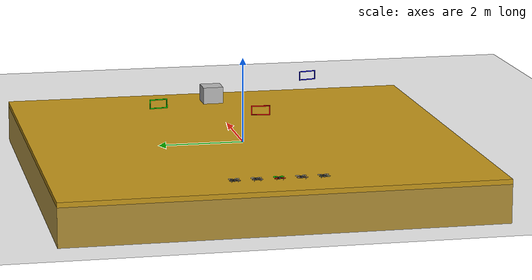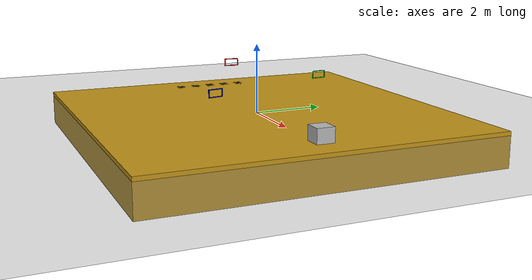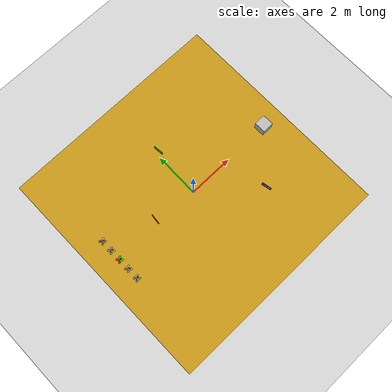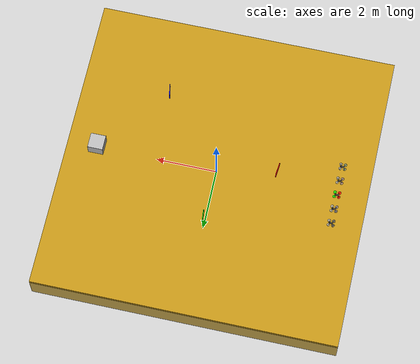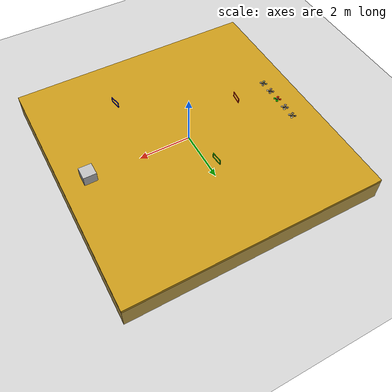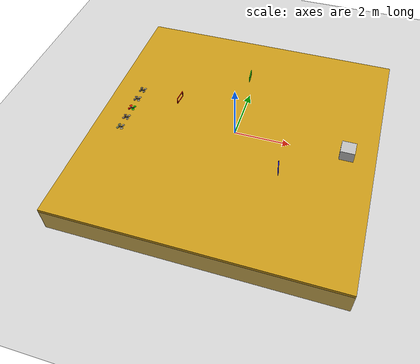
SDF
<sdf version="1.6">
 <world name="I3A world">
  <plugin name="World" filename="libWorld.so"/>
  <include><name>floor</name><uri>../models/DC/floor</uri></include>
  <include><name>tatami</name><uri>../models/DC/tatami</uri><pose>0 0 -0.4 0 0 0</pose></include>
  <include><name>vertiport</name><uri>../models/DC/base_drone</uri><pose>4 0 0.26 0 0 0</pose></include>
  <include><name>frame_red</name><uri>../models/DC/frame_red</uri><pose>-2 0 1.2 0 0 -0.1</pose></include>
  <include><name>frame_green</name><uri>../models/DC/frame_green</uri><pose>0 2 1 0 0 0.1</pose></include>
  <include><name>frame_blue</name><uri>../models/DC/frame_blue</uri><pose>2 -2 1.1 0 0 0.2</pose></include>
  <include><name>abejorro</name><pose>-4 0 0.13 0 0 0</pose><uri>../models/DC/abejorroC</uri></include>
  <include><name>abejorro1</name><uri>../models/DC/abejorro1</uri><pose>-4 1 0.13 0 0 0</pose></include>
  <include><name>abejorro2</name><pose>-4 0.5 0.13 0 0 0</pose><uri>../models/DC/abejorro2</uri></include>
  <include><name>abejorro3</name><pose>-4 -0.5 0.13 0 0 0</pose><uri>../models/DC/abejorro3</uri></include>
  <include><name>abejorro4</name><pose>-4 -1 0.13 0 0 0</pose><uri>../models/DC/abejorro4</uri></include>
  <scene><ambient>0.5 0.5 0.5 1.0</ambient><shadows>true</shadows><origin_visual>false</origin_visual></scene>
  <light type="directional" name="sun">
   <pose>0 0 10 0 0 0</pose>
   <diffuse>1 1 1 1</diffuse>
   <specular>0.2 0.2 0.2 1</specular>
   <attenuation><range>100</range><constant>1</constant></attenuation>
   <direction>0.5 0.1 -0.9</direction>
  </light>
  <physics type="ode">
   <max_step_size>0.001</max_step_size>
   <real_time_update_rate>1000</real_time_update_rate>
  </physics>
 </world>
</sdf>

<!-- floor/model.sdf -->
<sdf version="1.5">

<model name="ground_plane">

<static>true</static>

<link name="link">

  <collision name="collision">

    <geometry>
      <plane>
        <normal>0 0 1</normal>
        <size>200 200</size>
      </plane>
    </geometry>

    <surface>
      <friction>
        <ode>
          <mu>100.0</mu>
          <mu2>50.0</mu2>
          <slip1>0.0</slip1>
          <slip2>0.0</slip2>
        </ode>
      </friction>
    </surface>

  </collision>

  <visual name="visual">

    <cast_shadows>true</cast_shadows>

    <geometry>
      <plane>
        <normal>0 0 1</normal>
        <size>200 200</size>
      </plane>
    </geometry>
    <material>
        <ambient>0.5 0.5 0.5 1</ambient>
        <diffuse>0.5 0.5 0.5 1</diffuse>
    </material>

  </visual>

</link>

</model>
</sdf>

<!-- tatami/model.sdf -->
<sdf version="1.7">

<model name="tatami_model">

  <static>true</static>

  <link name="link">

    <collision name="collision">

      <geometry>
        <box>
          <size>10 10 1</size>
        </box>
      </geometry>

      <surface>
        <friction>
          <ode>
            <mu>100.0</mu>
            <mu2>50.0</mu2>
            <slip1>0.0</slip1>
            <slip2>0.0</slip2>
          </ode>
        </friction>
      </surface>

    </collision>

    <visual name="visual">

      <cast_shadows>true</cast_shadows>

      <geometry>
        <box>
          <size>10 10 1</size>
        </box>
      </geometry>
      <material>
          <ambient>0.76 0.58 0.09 1</ambient>
          <diffuse>0.76 0.58 0.09 1</diffuse>
      </material>

    </visual>

  </link>

</model>
</sdf>

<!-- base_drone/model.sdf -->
<sdf version="1.7">

<model name="base_drone">
	<static>true</static>
	<link name="link">

	<collision name="collision">

		<geometry>
			<box>
			<size>0.50 0.50 0.50</size>
			</box>
		</geometry>

		<surface>
			<friction>
			<ode>
				<mu>100.0</mu>
				<mu2>50.0</mu2>
				<slip1>0.0</slip1>
				<slip2>0.0</slip2>
			</ode>
			</friction>
		</surface>

	</collision>

	<visual name="visual">
		<geometry>
			<box>
			<size>0.50 0.50 0.50</size>
			</box>
		</geometry>
	</visual>

	</link>
</model>

</sdf>

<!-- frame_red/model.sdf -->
<sdf version="1.7">
<model name="frame_red">

<static>true</static>

<link name='framelink'>
    <!-- Marco de 40x20 cms. Borde de 3cms. -->

    <visual name='up'>
        <pose>0 0 0.10 0 0 0</pose>
        <geometry>
          <box>
            <size>0.02 0.42 0.02</size>
          </box>
        </geometry>
        <material>
          <ambient>1 0 0 1</ambient>
          <diffuse>1 0 0 1</diffuse>
        </material>
    </visual>

    <collision name='up'>
        <pose>0 0 0.10 0 0 0</pose>
        <geometry>
          <box>
            <size>0.02 0.42 0.02</size>
          </box>
        </geometry>
        <surface>
          <friction>
            <ode>
              <mu>0.1</mu>
              <mu2>0.2</mu2>
              <slip1>1.0</slip1>
              <slip2>1.0</slip2>
            </ode>
          </friction>
        </surface>
    </collision>

    <visual name='down'>
        <pose>0 0 -0.10 0 0 0</pose>
        <geometry>
          <box>
            <size>0.02 0.42 0.02</size>
          </box>
        </geometry>
        <material>
          <ambient>1 0 0 1</ambient>
          <diffuse>1 0 0 1</diffuse>
        </material>
    </visual>

    <collision name='down'>
        <pose>0 0 -0.10 0 0 0</pose>
        <geometry>
          <box>
            <size>0.02 0.42 0.02</size>
          </box>
        </geometry>
        <surface>
          <friction>
            <ode>
              <mu>0.1</mu>
              <mu2>0.2</mu2>
              <slip1>1.0</slip1>
              <slip2>1.0</slip2>
            </ode>
          </friction>
        </surface>
    </collision>

    <visual name='left'>
        <pose>0 -0.20 0 0 0 0</pose>
        <geometry>
          <box>
            <size>0.02 0.02 0.18</size>
          </box>
        </geometry>
        <material>
          <ambient>1 0 0 1</ambient>
          <diffuse>1 0 0 1</diffuse>
        </material>
    </visual>

    <collision name='left'>
        <pose>0 -0.20 0 0 0 0</pose>
        <geometry>
          <box>
            <size>0.02 0.02 0.18</size>
          </box>
        </geometry>
        <surface>
          <friction>
            <ode>
              <mu>0.1</mu>
              <mu2>0.2</mu2>
              <slip1>1.0</slip1>
              <slip2>1.0</slip2>
            </ode>
          </friction>
        </surface>
    </collision>

    <visual name='right'>
        <pose>0 0.20 0 0 0 0</pose>
        <geometry>
          <box>
            <size>0.02 0.02 0.18</size>
          </box>
        </geometry>
        <material>
          <ambient>1 0 0 1</ambient>
          <diffuse>1 0 0 1</diffuse>
        </material>
    </visual>

    <collision name='right'>
        <pose>0 0.20 0 0 0 0</pose>
        <geometry>
          <box>
            <size>0.02 0.02 0.18</size>
          </box>
        </geometry>
        <surface>
          <friction>
            <ode>
              <mu>0.1</mu>
              <mu2>0.2</mu2>
              <slip1>1.0</slip1>
              <slip2>1.0</slip2>
            </ode>
          </friction>
        </surface>
    </collision>

</link>

</model>

</sdf>

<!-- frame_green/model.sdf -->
<sdf version="1.7">
<model name="frame_green">

<static>true</static>

<link name='framelink'>
    <!-- Marco de 40x20 cms. Borde de 3cms. -->

    <visual name='up'>
        <pose>0 0 0.10 0 0 0</pose>
        <geometry>
          <box>
            <size>0.02 0.42 0.02</size>
          </box>
        </geometry>
        <material>
          <ambient>0 1 0 1</ambient>
          <diffuse>0 1 0 1</diffuse>
        </material>
    </visual>

    <collision name='up'>
        <pose>0 0 0.10 0 0 0</pose>
        <geometry>
          <box>
            <size>0.02 0.42 0.02</size>
          </box>
        </geometry>
        <surface>
          <friction>
            <ode>
              <mu>0.1</mu>
              <mu2>0.2</mu2>
              <slip1>1.0</slip1>
              <slip2>1.0</slip2>
            </ode>
          </friction>
        </surface>
    </collision>

    <visual name='down'>
        <pose>0 0 -0.10 0 0 0</pose>
        <geometry>
          <box>
            <size>0.02 0.42 0.02</size>
          </box>
        </geometry>
        <material>
          <ambient>0 1 0 1</ambient>
          <diffuse>0 1 0 1</diffuse>
        </material>
    </visual>

    <collision name='down'>
        <pose>0 0 -0.10 0 0 0</pose>
        <geometry>
          <box>
            <size>0.02 0.42 0.02</size>
          </box>
        </geometry>
        <surface>
          <friction>
            <ode>
              <mu>0.1</mu>
              <mu2>0.2</mu2>
              <slip1>1.0</slip1>
              <slip2>1.0</slip2>
            </ode>
          </friction>
        </surface>
    </collision>

    <visual name='left'>
        <pose>0 -0.20 0 0 0 0</pose>
        <geometry>
          <box>
            <size>0.02 0.02 0.18</size>
          </box>
        </geometry>
        <material>
          <ambient>0 1 0 1</ambient>
          <diffuse>0 1 0 1</diffuse>
        </material>
    </visual>

    <collision name='left'>
        <pose>0 -0.20 0 0 0 0</pose>
        <geometry>
          <box>
            <size>0.02 0.02 0.18</size>
          </box>
        </geometry>
        <surface>
          <friction>
            <ode>
              <mu>0.1</mu>
              <mu2>0.2</mu2>
              <slip1>1.0</slip1>
              <slip2>1.0</slip2>
            </ode>
          </friction>
        </surface>
    </collision>

    <visual name='right'>
        <pose>0 0.20 0 0 0 0</pose>
        <geometry>
          <box>
            <size>0.02 0.02 0.18</size>
          </box>
        </geometry>
        <material>
          <ambient>0 1 0 1</ambient>
          <diffuse>0 1 0 1</diffuse>
        </material>
    </visual>

    <collision name='right'>
        <pose>0 0.20 0 0 0 0</pose>
        <geometry>
          <box>
            <size>0.02 0.02 0.18</size>
          </box>
        </geometry>
        <surface>
          <friction>
            <ode>
              <mu>0.1</mu>
              <mu2>0.2</mu2>
              <slip1>1.0</slip1>
              <slip2>1.0</slip2>
            </ode>
          </friction>
        </surface>
    </collision>

</link>

</model>

</sdf>

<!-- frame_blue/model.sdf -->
<sdf version="1.6">
<model name="frame_blue">

<static>true</static>

<link name='framelink'>
    <!-- Marco de 40x20 cms. Borde de 3cms. -->

    <visual name='up'>
        <pose>0 0 0.10 0 0 0</pose>
        <geometry>
          <box>
            <size>0.02 0.42 0.02</size>
          </box>
        </geometry>
        <material>
          <ambient>0 0 1 1</ambient>
          <diffuse>0 0 1 1</diffuse>
        </material>
    </visual>

    <collision name='up'>
        <pose>0 0 0.10 0 0 0</pose>
        <geometry>
          <box>
            <size>0.02 0.42 0.02</size>
          </box>
        </geometry>
        <surface>
          <friction>
            <ode>
              <mu>0.1</mu>
              <mu2>0.2</mu2>
              <slip1>1.0</slip1>
              <slip2>1.0</slip2>
            </ode>
          </friction>
        </surface>
    </collision>

    <visual name='down'>
        <pose>0 0 -0.10 0 0 0</pose>
        <geometry>
          <box>
            <size>0.02 0.42 0.02</size>
          </box>
        </geometry>
        <material>
          <ambient>0 0 1 1</ambient>
          <diffuse>0 0 1 1</diffuse>
        </material>
    </visual>

    <collision name='down'>
        <pose>0 0 -0.10 0 0 0</pose>
        <geometry>
          <box>
            <size>0.02 0.42 0.02</size>
          </box>
        </geometry>
        <surface>
          <friction>
            <ode>
              <mu>0.1</mu>
              <mu2>0.2</mu2>
              <slip1>1.0</slip1>
              <slip2>1.0</slip2>
            </ode>
          </friction>
        </surface>
    </collision>

    <visual name='left'>
        <pose>0 -0.20 0 0 0 0</pose>
        <geometry>
          <box>
            <size>0.02 0.02 0.18</size>
          </box>
        </geometry>
        <material>
          <ambient>0 0 1 1</ambient>
          <diffuse>0 0 1 1</diffuse>
        </material>
    </visual>

    <collision name='left'>
        <pose>0 -0.20 0 0 0 0</pose>
        <geometry>
          <box>
            <size>0.02 0.02 0.18</size>
          </box>
        </geometry>
        <surface>
          <friction>
            <ode>
              <mu>0.1</mu>
              <mu2>0.2</mu2>
              <slip1>1.0</slip1>
              <slip2>1.0</slip2>
            </ode>
          </friction>
        </surface>
    </collision>

    <visual name='right'>
        <pose>0 0.20 0 0 0 0</pose>
        <geometry>
          <box>
            <size>0.02 0.02 0.18</size>
          </box>
        </geometry>
        <material>
          <ambient>0 0 1 1</ambient>
          <diffuse>0 0 1 1</diffuse>
        </material>
    </visual>

    <collision name='right'>
        <pose>0 0.20 0 0 0 0</pose>
        <geometry>
          <box>
            <size>0.02 0.02 0.18</size>
          </box>
        </geometry>
        <surface>
          <friction>
            <ode>
              <mu>0.1</mu>
              <mu2>0.2</mu2>
              <slip1>1.0</slip1>
              <slip2>1.0</slip2>
            </ode>
          </friction>
        </surface>
    </collision>

</link>

</model>

</sdf>

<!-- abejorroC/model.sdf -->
<sdf version="1.6">

<model name="abejorroC">

<plugin name="DCdrone" filename="libDCdrone.so">
</plugin>

<static>false</static>

<link name='dronelink'>

<visual name='fuselaje'>
    <pose>0 0 0 0 0 0</pose>
    <geometry>
      <box>
        <size>0.10 0.04 0.03</size>
      </box>
    </geometry>
    <material>
      <ambient>0.3 0.3 0.3 1</ambient>
      <diffuse>0.3 0.3 0.3 1</diffuse>
    </material>
</visual>

<collision name='fuselaje'>
    <pose>0 0 0 0 0 0</pose>
    <geometry>
      <box>
        <size>0.10 0.04 0.03</size>
      </box>
    </geometry>
    <surface>
      <friction>
        <ode>
          <mu>0.1</mu>
          <mu2>0.2</mu2>
          <slip1>1.0</slip1>
          <slip2>1.0</slip2>
        </ode>
      </friction>
    </surface>
</collision>

<visual name='camara'>
    <pose>0.065 0 0 0 0 0</pose>
    <geometry>
      <box>
        <size>0.03 0.02 0.02</size>
      </box>
    </geometry>
    <material>
      <ambient>0.2 0.2 0.2 1</ambient>
      <diffuse>0.2 0.2 0.2 1</diffuse>
    </material>
</visual>

<collision name='camara'>
    <pose>0.065 0 0 0 0 0</pose>
    <geometry>
      <box>
        <size>0.03 0.02 0.02</size>
      </box>
    </geometry>
    <surface>
      <friction>
        <ode>
          <mu>0.1</mu>
          <mu2>0.2</mu2>
          <slip1>1.0</slip1>
          <slip2>1.0</slip2>
        </ode>
      </friction>
    </surface>
</collision>

<sensor name='NavSim/abejorro/onboard_cam' type='camera'>

  <pose>0.08 0 0 0 0 0</pose>
  <camera name='onboard_cam'>
    <horizontal_fov>1.57</horizontal_fov>
    <image>
        <width> 320</width>
        <height>240</height>
    </image>
    <clip>
        <near>0.01</near>
        <far>20</far>
    </clip>
  </camera>
  <update_rate>10</update_rate>
  <always_on>true</always_on>
  <visualize>false</visualize>

  <plugin name="onboard_cam" filename="libgazebo_ros_camera.so">
    <alwaysOn>true</alwaysOn>
    <updateRate>1</updateRate>
    <cameraName>onboard_cam</cameraName>
  </plugin>

</sensor>

<visual name='brazo_NE'>
    <pose>0.0550 -0.0406 0 0 0 -1.0472</pose>
    <geometry>
      <box>
        <size>0.08 .01 .01</size>
      </box>
    </geometry>
    <material>
      <ambient>0.3 0.3 0.3 1</ambient>
      <diffuse>0.3 0.3 0.3 1</diffuse>
    </material>
</visual>

<collision name='brazo_NE'>
    <pose>0.0550 -0.0406 0 0 0 -1.0472</pose>
    <geometry>
      <box>
        <size>0.08 .01 .01</size>
      </box>
    </geometry>
    <surface>
      <friction>
        <ode>
          <mu>0.1</mu>
          <mu2>0.2</mu2>
          <slip1>1.0</slip1>
          <slip2>1.0</slip2>
        </ode>
      </friction>
    </surface>
</collision>

<visual name="motor_NE">
    <pose>0.0750 -0.0750 -0.01 0 0 0</pose>
    <geometry>
        <cylinder>
            <radius>.005</radius>
            <length>.04</length>
        </cylinder>
    </geometry>
    <material>
        <ambient>0 0 0 1</ambient>  <!--color Red Green Blue Alpha [0-1] -->
        <diffuse>0 0 0 1</diffuse>
    </material>
</visual>

<collision name="motor_NE">
    <pose>0.0750 -0.0750 -0.01 0 0 0</pose>
    <geometry>
        <cylinder>
            <radius>.005</radius>
            <length>.04</length>
        </cylinder>
    </geometry>
    <surface>
        <friction>
            <ode>
            <mu>100.0</mu>
            <mu2>50.0</mu2>
            <slip1>0.0</slip1>
            <slip2>0.0</slip2>
            </ode>
        </friction>
    </surface>
</collision>

<visual name="rotor_NE">
    <pose>0.0750 -0.0750 0.01 0 0 0</pose>
    <geometry>
        <cylinder>
            <radius>0.05</radius>
            <length>0.005</length>
        </cylinder>
    </geometry>
    <material>
        <ambient>0 1 0 0.8</ambient>  <!--color Red Green Blue Alpha [0-1] -->
        <diffuse>0 1 0 0.8</diffuse>
    </material>
</visual>

<collision name="rotor_NE">
    <pose>0.0750 -0.0750 0.01 0 0 0</pose>
    <geometry>
        <cylinder>
            <radius>0.05</radius>
            <length>0.005</length>
        </cylinder>
    </geometry>
    <surface>
        <friction>
            <ode>
            <mu>0.1</mu>
            <mu2>0.2</mu2>
            <slip1>1.0</slip1>
            <slip2>1.0</slip2>
            </ode>
        </friction>
    </surface>
</collision>

<visual name='brazo_NW'>
    <pose>0.0550 0.0406 0 0 0 1.0472</pose>
    <geometry>
      <box>
        <size>0.08 0.01 0.01</size>
      </box>
    </geometry>
    <material>
      <ambient>0.3 0.3 0.3 1</ambient>
      <diffuse>0.3 0.3 0.3 1</diffuse>
    </material>
</visual>

<collision name='brazo_NW'>
    <pose>0.0550 0.0406 0 0 0 1.0472</pose>
    <geometry>
      <box>
        <size>0.08 0.01 0.01</size>
      </box>
    </geometry>
    <surface>
      <friction>
        <ode>
          <mu>0.1</mu>
          <mu2>0.2</mu2>
          <slip1>1.0</slip1>
          <slip2>1.0</slip2>
        </ode>
      </friction>
    </surface>
</collision>

<visual name="motor_NW">
    <pose>0.0750 0.0750 -0.01 0 0 0</pose>
    <geometry>
        <cylinder>
            <radius>0.005</radius>
            <length>0.04</length>
        </cylinder>
    </geometry>
    <material>
        <ambient>0 0 0 1</ambient>  <!--color Red Green Blue Alpha [0-1] -->
        <diffuse>0 0 0 1</diffuse>
    </material>
</visual>

<collision name="motor_NW">
    <pose>0.0750 0.0750 -0.01 0 0 0</pose>
    <geometry>
        <cylinder>
            <radius>0.005</radius>
            <length>0.04</length>
        </cylinder>
    </geometry>
    <surface>
        <friction>
            <ode>
            <mu>100.0</mu>
            <mu2>50.0</mu2>
            <slip1>0.0</slip1>
            <slip2>0.0</slip2>
            </ode>
        </friction>
    </surface>
</collision>

<visual name="rotor_NW">
    <pose>0.0750 0.0750 0.01 0 0 0</pose>
    <geometry>
        <cylinder>
            <radius>0.05</radius>
            <length>0.005</length>
        </cylinder>
    </geometry>
    <material>
        <ambient>0 1 0 0.8</ambient>  <!--color Red Green Blue Alpha [0-1] -->
        <diffuse>0 1 0 0.8</diffuse>
    </material>
</visual>

<collision name="rotor_NW">
    <pose>0.0750 0.0750 0.01 0 0 0</pose>
    <geometry>
        <cylinder>
            <radius>0.05</radius>
            <length>0.005</length>
        </cylinder>
    </geometry>
    <surface>
        <friction>
            <ode>
            <mu>0.1</mu>
            <mu2>0.2</mu2>
            <slip1>1.0</slip1>
            <slip2>1.0</slip2>
            </ode>
        </friction>
    </surface>
</collision>

<visual name='brazo_SE'>
    <pose>-0.0550 -0.0406 0 0 0 1.0472</pose>
    <geometry>
      <box>
        <size>0.08 0.01 0.01</size>
      </box>
    </geometry>
    <material>
      <ambient>0.3 0.3 0.3 1</ambient>
      <diffuse>0.3 0.3 0.3 1</diffuse>
    </material>
</visual>

<collision name='brazo_SE'>
    <pose>-0.0550 -0.0406 0 0 0 1.0472</pose>
    <geometry>
      <box>
        <size>0.08 0.01 0.01</size>
      </box>
    </geometry>
    <surface>
      <friction>
        <ode>
          <mu>0.1</mu>
          <mu2>0.2</mu2>
          <slip1>1.0</slip1>
          <slip2>1.0</slip2>
        </ode>
      </friction>
    </surface>
</collision>

<visual name="motor_SE">
    <pose>-0.0750 -0.0750 -0.01 0 0 0</pose>
    <geometry>
        <cylinder>
            <radius>0.005</radius>
            <length>0.04</length>
        </cylinder>
    </geometry>
    <material>
        <ambient>0 0 0 1</ambient>  <!--color Red Green Blue Alpha [0-1] -->
        <diffuse>0 0 0 1</diffuse>
    </material>
</visual>

<collision name="motor_SE">
    <pose>-0.0750 -0.0750 -0.01 0 0 0</pose>
    <geometry>
        <cylinder>
            <radius>0.005</radius>
            <length>0.04</length>
        </cylinder>
    </geometry>
    <surface>
        <friction>
            <ode>
            <mu>100.0</mu>
            <mu2>50.0</mu2>
            <slip1>0.0</slip1>
            <slip2>0.0</slip2>
            </ode>
        </friction>
    </surface>
</collision>

<visual name="rotor_SE">
    <pose>-0.0750 -0.0750 0.01 0 0 0</pose>
    <geometry>
        <cylinder>
            <radius>0.05</radius>
            <length>.005</length>
        </cylinder>
    </geometry>
    <material>
        <ambient>1 0 0 0.8</ambient>  <!--color Red Green Blue Alpha [0-1] -->
        <diffuse>1 0 0 0.8</diffuse>
    </material>
</visual>

<collision name="rotor_SE">
    <pose>-0.0750 -0.0750 0.01 0 0 0</pose>
    <geometry>
        <cylinder>
            <radius>0.05</radius>
            <length>0.005</length>
        </cylinder>
    </geometry>
    <surface>
        <friction>
            <ode>
            <mu>0.1</mu>
            <mu2>0.2</mu2>
            <slip1>1.0</slip1>
            <slip2>1.0</slip2>
            </ode>
        </friction>
    </surface>
</collision>

<visual name='brazo_SW'>
    <pose>-0.0550 0.0406 0 0 0 -1.0472</pose>
    <geometry>
      <box>
        <size>0.08 0.01 0.01</size>
      </box>
    </geometry>
    <material>
      <ambient>0.3 0.3 0.3 1</ambient>
      <diffuse>0.3 0.3 0.3 1</diffuse>
    </material>
</visual>

<collision name='brazo_SW'>
    <pose>-0.0550 0.0406 0 0 0 -1.0472</pose>
    <geometry>
      <box>
        <size>0.08 0.01 0.01</size>
      </box>
    </geometry>
    <surface>
      <friction>
        <ode>
          <mu>0.1</mu>
          <mu2>0.2</mu2>
          <slip1>1.0</slip1>
          <slip2>1.0</slip2>
        </ode>
      </friction>
    </surface>
</collision>

<visual name="motor_SW">
    <pose>-0.0750 0.0750 -0.01 0 0 0</pose>
    <geometry>
        <cylinder>
            <radius>0.005</radius>
            <length>0.04</length>
        </cylinder>
    </geometry>
    <material>
        <ambient>0 0 0 1</ambient>  <!--color Red Green Blue Alpha [0-1] -->
        <diffuse>0 0 0 1</diffuse>
    </material>
</visual>

<collision name="motor_SW">
    <pose>-0.0750 0.0750 -0.01 0 0 0</pose>
    <geometry>
        <cylinder>
            <radius>0.005</radius>
            <length>0.04</length>
        </cylinder>
    </geometry>
    <surface>
        <friction>
            <ode>
            <mu>100.0</mu>
            <mu2>50.0</mu2>
            <slip1>0.0</slip1>
            <slip2>0.0</slip2>
            </ode>
        </friction>
    </surface>
</collision>

<visual name="rotor_SW">
    <pose>-0.0750 0.0750 0.01 0 0 0</pose>
    <geometry>
        <cylinder>
            <radius>0.05</radius>
            <length>0.005</length>
        </cylinder>
    </geometry>
    <material>
        <ambient>1 0 0 0.8</ambient>  <!--color Red Green Blue Alpha [0-1] -->
        <diffuse>1 0 0 0.8</diffuse>
    </material>
</visual>

<collision name="rotor_SW">
    <pose>-0.0750 0.0750 0.01 0 0 0</pose>
    <geometry>
        <cylinder>
            <radius>0.05</radius>
            <length>0.005</length>
        </cylinder>
    </geometry>
    <surface>
        <friction>
            <ode>
            <mu>0.1</mu>
            <mu2>0.2</mu2>
            <slip1>1.0</slip1>
            <slip2>1.0</slip2>
            </ode>
        </friction>
    </surface>
</collision>

<inertial>
  <mass>0.300</mass>

  <inertia>                <!-- http://en.wikipedia.org/wiki/List_of_moments_of_inertia -->
    <ixx>0.001022500</ixx> <!-- for a box: ixx = 1/12 * mass * (y*y + z*z) -->
    <ixy>0.0</ixy>         <!-- for a box: ixy = 0 -->
    <ixz>0.0</ixz>         <!-- for a box: ixz = 0 -->
    <iyy>0.001022500</iyy> <!-- for a box: iyy = 1/12 * mass * (x*x + z*z) -->
    <iyz>0.0</iyz>         <!-- for a box: iyz = 0 -->
    <izz>0.002000000</izz> <!-- for a box: izz = 1/12 * mass * (x*x + y*y) -->
  </inertia>
</inertial>

</link>

</model>

</sdf>

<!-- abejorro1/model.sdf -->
<sdf version="1.7">

<model name="abejorro1">

<plugin name="DCdrone" filename="libDCdrone.so">
</plugin>

<static>false</static>

<link name='dronelink'>

<visual name='fuselaje'>
    <pose>0 0 0 0 0 0</pose>
    <geometry>
      <box>
        <size>0.10 0.04 0.03</size>
      </box>
    </geometry>
    <material>
      <ambient>0.3 0.3 0.3 1</ambient>
      <diffuse>0.3 0.3 0.3 1</diffuse>
    </material>
</visual>

<collision name='fuselaje'>
    <pose>0 0 0 0 0 0</pose>
    <geometry>
      <box>
        <size>0.10 0.04 0.03</size>
      </box>
    </geometry>
    <surface>
      <friction>
        <ode>
          <mu>0.1</mu>
          <mu2>0.2</mu2>
          <slip1>1.0</slip1>
          <slip2>1.0</slip2>
        </ode>
      </friction>
    </surface>
</collision>

<visual name='camara'>
    <pose>0.065 0 0 0 0 0</pose>
    <geometry>
      <box>
        <size>0.03 0.02 0.02</size>
      </box>
    </geometry>
    <material>
      <ambient>0.2 0.2 0.2 1</ambient>
      <diffuse>0.2 0.2 0.2 1</diffuse>
    </material>
</visual>

<collision name='camara'>
    <pose>0.065 0 0 0 0 0</pose>
    <geometry>
      <box>
        <size>0.03 0.02 0.02</size>
      </box>
    </geometry>
    <surface>
      <friction>
        <ode>
          <mu>0.1</mu>
          <mu2>0.2</mu2>
          <slip1>1.0</slip1>
          <slip2>1.0</slip2>
        </ode>
      </friction>
    </surface>
</collision>

<sensor name='NavSim/abejorro1/follow_cam' type='camera'>

  <pose>-0.20 0 0.08 0 0 0</pose>
  <camera name='follow_cam1'>
    <horizontal_fov>1.57</horizontal_fov>
    <image>
        <width> 480</width>
        <height>320</height>
    </image>
    <clip>
        <near>0.05</near>
        <far>200</far>
    </clip>
  </camera>
  <update_rate>10</update_rate>
  <always_on>true</always_on>
  <visualize>false</visualize>

  <plugin name="follow_cam1" filename="libgazebo_ros_camera.so">
    <alwaysOn>true</alwaysOn>
    <updateRate>1</updateRate>
    <cameraName>follow_cam1</cameraName>
  </plugin>

</sensor>

<visual name='brazo_NE'>
    <pose>0.0550 -0.0406 0 0 0 -1.0472</pose>
    <geometry>
      <box>
        <size>0.08 .01 .01</size>
      </box>
    </geometry>
    <material>
      <ambient>0.3 0.3 0.3 1</ambient>
      <diffuse>0.3 0.3 0.3 1</diffuse>
    </material>
</visual>

<collision name='brazo_NE'>
    <pose>0.0550 -0.0406 0 0 0 -1.0472</pose>
    <geometry>
      <box>
        <size>0.08 .01 .01</size>
      </box>
    </geometry>
    <surface>
      <friction>
        <ode>
          <mu>0.1</mu>
          <mu2>0.2</mu2>
          <slip1>1.0</slip1>
          <slip2>1.0</slip2>
        </ode>
      </friction>
    </surface>
</collision>

<visual name="motor_NE">
    <pose>0.0750 -0.0750 -0.01 0 0 0</pose>
    <geometry>
        <cylinder>
            <radius>.005</radius>
            <length>.04</length>
        </cylinder>
    </geometry>
    <material>
        <ambient>0 0 0 1</ambient>  <!--color Red Green Blue Alpha [0-1] -->
        <diffuse>0 0 0 1</diffuse>
    </material>
</visual>

<collision name="motor_NE">
    <pose>0.0750 -0.0750 -0.01 0 0 0</pose>
    <geometry>
        <cylinder>
            <radius>.005</radius>
            <length>.04</length>
        </cylinder>
    </geometry>
    <surface>
        <friction>
            <ode>
            <mu>100.0</mu>
            <mu2>50.0</mu2>
            <slip1>0.0</slip1>
            <slip2>0.0</slip2>
            </ode>
        </friction>
    </surface>
</collision>

<visual name="rotor_NE">
    <pose>0.0750 -0.0750 0.01 0 0 0</pose>
    <geometry>
        <cylinder>
            <radius>0.05</radius>
            <length>0.005</length>
        </cylinder>
    </geometry>
    <material>
      <ambient>0.7 0.7 0.7 0.8</ambient>  <!--color Red Green Blue Alpha [0-1] -->
      <diffuse>0.7 0.7 0.7 0.8</diffuse>
  </material>
</visual>

<collision name="rotor_NE">
    <pose>0.0750 -0.0750 0.01 0 0 0</pose>
    <geometry>
        <cylinder>
            <radius>0.05</radius>
            <length>0.005</length>
        </cylinder>
    </geometry>
    <surface>
        <friction>
            <ode>
            <mu>0.1</mu>
            <mu2>0.2</mu2>
            <slip1>1.0</slip1>
            <slip2>1.0</slip2>
            </ode>
        </friction>
    </surface>
</collision>

<visual name='brazo_NW'>
    <pose>0.0550 0.0406 0 0 0 1.0472</pose>
    <geometry>
      <box>
        <size>0.08 0.01 0.01</size>
      </box>
    </geometry>
    <material>
      <ambient>0.3 0.3 0.3 1</ambient>
      <diffuse>0.3 0.3 0.3 1</diffuse>
    </material>
</visual>

<collision name='brazo_NW'>
    <pose>0.0550 0.0406 0 0 0 1.0472</pose>
    <geometry>
      <box>
        <size>0.08 0.01 0.01</size>
      </box>
    </geometry>
    <surface>
      <friction>
        <ode>
          <mu>0.1</mu>
          <mu2>0.2</mu2>
          <slip1>1.0</slip1>
          <slip2>1.0</slip2>
        </ode>
      </friction>
    </surface>
</collision>

<visual name="motor_NW">
    <pose>0.0750 0.0750 -0.01 0 0 0</pose>
    <geometry>
        <cylinder>
            <radius>0.005</radius>
            <length>0.04</length>
        </cylinder>
    </geometry>
    <material>
        <ambient>0 0 0 1</ambient>  <!--color Red Green Blue Alpha [0-1] -->
        <diffuse>0 0 0 1</diffuse>
    </material>
</visual>

<collision name="motor_NW">
    <pose>0.0750 0.0750 -0.01 0 0 0</pose>
    <geometry>
        <cylinder>
            <radius>0.005</radius>
            <length>0.04</length>
        </cylinder>
    </geometry>
    <surface>
        <friction>
            <ode>
            <mu>100.0</mu>
            <mu2>50.0</mu2>
            <slip1>0.0</slip1>
            <slip2>0.0</slip2>
            </ode>
        </friction>
    </surface>
</collision>

<visual name="rotor_NW">
    <pose>0.0750 0.0750 0.01 0 0 0</pose>
    <geometry>
        <cylinder>
            <radius>0.05</radius>
            <length>0.005</length>
        </cylinder>
    </geometry>
    <material>
      <ambient>0.7 0.7 0.7 0.8</ambient>  <!--color Red Green Blue Alpha [0-1] -->
      <diffuse>0.7 0.7 0.7 0.8</diffuse>
  </material>
</visual>

<collision name="rotor_NW">
    <pose>0.0750 0.0750 0.01 0 0 0</pose>
    <geometry>
        <cylinder>
            <radius>0.05</radius>
            <length>0.005</length>
        </cylinder>
    </geometry>
    <surface>
        <friction>
            <ode>
            <mu>0.1</mu>
            <mu2>0.2</mu2>
            <slip1>1.0</slip1>
            <slip2>1.0</slip2>
            </ode>
        </friction>
    </surface>
</collision>

<visual name='brazo_SE'>
    <pose>-0.0550 -0.0406 0 0 0 1.0472</pose>
    <geometry>
      <box>
        <size>0.08 0.01 0.01</size>
      </box>
    </geometry>
    <material>
      <ambient>0.3 0.3 0.3 1</ambient>
      <diffuse>0.3 0.3 0.3 1</diffuse>
    </material>
</visual>

<collision name='brazo_SE'>
    <pose>-0.0550 -0.0406 0 0 0 1.0472</pose>
    <geometry>
      <box>
        <size>0.08 0.01 0.01</size>
      </box>
    </geometry>
    <surface>
      <friction>
        <ode>
          <mu>0.1</mu>
          <mu2>0.2</mu2>
          <slip1>1.0</slip1>
          <slip2>1.0</slip2>
        </ode>
      </friction>
    </surface>
</collision>

<visual name="motor_SE">
    <pose>-0.0750 -0.0750 -0.01 0 0 0</pose>
    <geometry>
        <cylinder>
            <radius>0.005</radius>
            <length>0.04</length>
        </cylinder>
    </geometry>
    <material>
        <ambient>0 0 0 1</ambient>  <!--color Red Green Blue Alpha [0-1] -->
        <diffuse>0 0 0 1</diffuse>
    </material>
</visual>

<collision name="motor_SE">
    <pose>-0.0750 -0.0750 -0.01 0 0 0</pose>
    <geometry>
        <cylinder>
            <radius>0.005</radius>
            <length>0.04</length>
        </cylinder>
    </geometry>
    <surface>
        <friction>
            <ode>
            <mu>100.0</mu>
            <mu2>50.0</mu2>
            <slip1>0.0</slip1>
            <slip2>0.0</slip2>
            </ode>
        </friction>
    </surface>
</collision>

<visual name="rotor_SE">
    <pose>-0.0750 -0.0750 0.01 0 0 0</pose>
    <geometry>
        <cylinder>
            <radius>0.05</radius>
            <length>.005</length>
        </cylinder>
    </geometry>
    <material>
        <ambient>0.4 0.4 0.4 0.8</ambient>  <!--color Red Green Blue Alpha [0-1] -->
        <diffuse>0.4 0.4 0.4 0.8</diffuse>
    </material>
</visual>

<collision name="rotor_SE">
    <pose>-0.0750 -0.0750 0.01 0 0 0</pose>
    <geometry>
        <cylinder>
            <radius>0.05</radius>
            <length>0.005</length>
        </cylinder>
    </geometry>
    <surface>
        <friction>
            <ode>
            <mu>0.1</mu>
            <mu2>0.2</mu2>
            <slip1>1.0</slip1>
            <slip2>1.0</slip2>
            </ode>
        </friction>
    </surface>
</collision>

<visual name='brazo_SW'>
    <pose>-0.0550 0.0406 0 0 0 -1.0472</pose>
    <geometry>
      <box>
        <size>0.08 0.01 0.01</size>
      </box>
    </geometry>
    <material>
      <ambient>0.3 0.3 0.3 1</ambient>
      <diffuse>0.3 0.3 0.3 1</diffuse>
    </material>
</visual>

<collision name='brazo_SW'>
    <pose>-0.0550 0.0406 0 0 0 -1.0472</pose>
    <geometry>
      <box>
        <size>0.08 0.01 0.01</size>
      </box>
    </geometry>
    <surface>
      <friction>
        <ode>
          <mu>0.1</mu>
          <mu2>0.2</mu2>
          <slip1>1.0</slip1>
          <slip2>1.0</slip2>
        </ode>
      </friction>
    </surface>
</collision>

<visual name="motor_SW">
    <pose>-0.0750 0.0750 -0.01 0 0 0</pose>
    <geometry>
        <cylinder>
            <radius>0.005</radius>
            <length>0.04</length>
        </cylinder>
    </geometry>
    <material>
        <ambient>0 0 0 1</ambient>  <!--color Red Green Blue Alpha [0-1] -->
        <diffuse>0 0 0 1</diffuse>
    </material>
</visual>

<collision name="motor_SW">
    <pose>-0.0750 0.0750 -0.01 0 0 0</pose>
    <geometry>
        <cylinder>
            <radius>0.005</radius>
            <length>0.04</length>
        </cylinder>
    </geometry>
    <surface>
        <friction>
            <ode>
            <mu>100.0</mu>
            <mu2>50.0</mu2>
            <slip1>0.0</slip1>
            <slip2>0.0</slip2>
            </ode>
        </friction>
    </surface>
</collision>

<visual name="rotor_SW">
    <pose>-0.0750 0.0750 0.01 0 0 0</pose>
    <geometry>
        <cylinder>
            <radius>0.05</radius>
            <length>0.005</length>
        </cylinder>
    </geometry>
    <material>
      <ambient>0.4 0.4 0.4 0.8</ambient>  <!--color Red Green Blue Alpha [0-1] -->
      <diffuse>0.4 0.4 0.4 0.8</diffuse>
  </material>
</visual>

<collision name="rotor_SW">
    <pose>-0.0750 0.0750 0.01 0 0 0</pose>
    <geometry>
        <cylinder>
            <radius>0.05</radius>
            <length>0.005</length>
        </cylinder>
    </geometry>
    <surface>
        <friction>
            <ode>
            <mu>0.1</mu>
            <mu2>0.2</mu2>
            <slip1>1.0</slip1>
            <slip2>1.0</slip2>
            </ode>
        </friction>
    </surface>
</collision>

<inertial>
  <mass>0.300</mass>

  <inertia>                <!-- http://en.wikipedia.org/wiki/List_of_moments_of_inertia -->
    <ixx>0.001022500</ixx> <!-- for a box: ixx = 1/12 * mass * (y*y + z*z) -->
    <ixy>0.0</ixy>         <!-- for a box: ixy = 0 -->
    <ixz>0.0</ixz>         <!-- for a box: ixz = 0 -->
    <iyy>0.001022500</iyy> <!-- for a box: iyy = 1/12 * mass * (x*x + z*z) -->
    <iyz>0.0</iyz>         <!-- for a box: iyz = 0 -->
    <izz>0.002000000</izz> <!-- for a box: izz = 1/12 * mass * (x*x + y*y) -->
  </inertia>
</inertial>

</link>

</model>

</sdf>

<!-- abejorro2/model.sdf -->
<sdf version="1.7">

<model name="abejorro2">

<plugin name="DCdrone" filename="libDCdrone.so">
</plugin>

<static>false</static>

<link name='dronelink'>

<visual name='fuselaje'>
    <pose>0 0 0 0 0 0</pose>
    <geometry>
      <box>
        <size>0.10 0.04 0.03</size>
      </box>
    </geometry>
    <material>
      <ambient>0.3 0.3 0.3 1</ambient>
      <diffuse>0.3 0.3 0.3 1</diffuse>
    </material>
</visual>

<collision name='fuselaje'>
    <pose>0 0 0 0 0 0</pose>
    <geometry>
      <box>
        <size>0.10 0.04 0.03</size>
      </box>
    </geometry>
    <surface>
      <friction>
        <ode>
          <mu>0.1</mu>
          <mu2>0.2</mu2>
          <slip1>1.0</slip1>
          <slip2>1.0</slip2>
        </ode>
      </friction>
    </surface>
</collision>

<visual name='camara'>
    <pose>0.065 0 0 0 0 0</pose>
    <geometry>
      <box>
        <size>0.03 0.02 0.02</size>
      </box>
    </geometry>
    <material>
      <ambient>0.2 0.2 0.2 1</ambient>
      <diffuse>0.2 0.2 0.2 1</diffuse>
    </material>
</visual>

<collision name='camara'>
    <pose>0.065 0 0 0 0 0</pose>
    <geometry>
      <box>
        <size>0.03 0.02 0.02</size>
      </box>
    </geometry>
    <surface>
      <friction>
        <ode>
          <mu>0.1</mu>
          <mu2>0.2</mu2>
          <slip1>1.0</slip1>
          <slip2>1.0</slip2>
        </ode>
      </friction>
    </surface>
</collision>

<sensor name='NavSim/abejorro2/follow_cam' type='camera'>

  <pose>-0.20 0 0.08 0 0 0</pose>
  <camera name='follow_cam2'>
    <horizontal_fov>1.57</horizontal_fov>
    <image>
        <width> 480</width>
        <height>320</height>
    </image>
    <clip>
        <near>0.05</near>
        <far>200</far>
    </clip>
  </camera>
  <update_rate>10</update_rate>
  <always_on>true</always_on>
  <visualize>false</visualize>

  <plugin name="follow_cam2" filename="libgazebo_ros_camera.so">
    <alwaysOn>true</alwaysOn>
    <updateRate>1</updateRate>
    <cameraName>follow_cam2</cameraName>
  </plugin>

</sensor>

<visual name='brazo_NE'>
    <pose>0.0550 -0.0406 0 0 0 -1.0472</pose>
    <geometry>
      <box>
        <size>0.08 .01 .01</size>
      </box>
    </geometry>
    <material>
      <ambient>0.3 0.3 0.3 1</ambient>
      <diffuse>0.3 0.3 0.3 1</diffuse>
    </material>
</visual>

<collision name='brazo_NE'>
    <pose>0.0550 -0.0406 0 0 0 -1.0472</pose>
    <geometry>
      <box>
        <size>0.08 .01 .01</size>
      </box>
    </geometry>
    <surface>
      <friction>
        <ode>
          <mu>0.1</mu>
          <mu2>0.2</mu2>
          <slip1>1.0</slip1>
          <slip2>1.0</slip2>
        </ode>
      </friction>
    </surface>
</collision>

<visual name="motor_NE">
    <pose>0.0750 -0.0750 -0.01 0 0 0</pose>
    <geometry>
        <cylinder>
            <radius>.005</radius>
            <length>.04</length>
        </cylinder>
    </geometry>
    <material>
        <ambient>0 0 0 1</ambient>  <!--color Red Green Blue Alpha [0-1] -->
        <diffuse>0 0 0 1</diffuse>
    </material>
</visual>

<collision name="motor_NE">
    <pose>0.0750 -0.0750 -0.01 0 0 0</pose>
    <geometry>
        <cylinder>
            <radius>.005</radius>
            <length>.04</length>
        </cylinder>
    </geometry>
    <surface>
        <friction>
            <ode>
            <mu>100.0</mu>
            <mu2>50.0</mu2>
            <slip1>0.0</slip1>
            <slip2>0.0</slip2>
            </ode>
        </friction>
    </surface>
</collision>

<visual name="rotor_NE">
    <pose>0.0750 -0.0750 0.01 0 0 0</pose>
    <geometry>
        <cylinder>
            <radius>0.05</radius>
            <length>0.005</length>
        </cylinder>
    </geometry>
    <material>
      <ambient>0.7 0.7 0.7 0.8</ambient>  <!--color Red Green Blue Alpha [0-1] -->
      <diffuse>0.7 0.7 0.7 0.8</diffuse>
  </material>
</visual>

<collision name="rotor_NE">
    <pose>0.0750 -0.0750 0.01 0 0 0</pose>
    <geometry>
        <cylinder>
            <radius>0.05</radius>
            <length>0.005</length>
        </cylinder>
    </geometry>
    <surface>
        <friction>
            <ode>
            <mu>0.1</mu>
            <mu2>0.2</mu2>
            <slip1>1.0</slip1>
            <slip2>1.0</slip2>
            </ode>
        </friction>
    </surface>
</collision>

<visual name='brazo_NW'>
    <pose>0.0550 0.0406 0 0 0 1.0472</pose>
    <geometry>
      <box>
        <size>0.08 0.01 0.01</size>
      </box>
    </geometry>
    <material>
      <ambient>0.3 0.3 0.3 1</ambient>
      <diffuse>0.3 0.3 0.3 1</diffuse>
    </material>
</visual>

<collision name='brazo_NW'>
    <pose>0.0550 0.0406 0 0 0 1.0472</pose>
    <geometry>
      <box>
        <size>0.08 0.01 0.01</size>
      </box>
    </geometry>
    <surface>
      <friction>
        <ode>
          <mu>0.1</mu>
          <mu2>0.2</mu2>
          <slip1>1.0</slip1>
          <slip2>1.0</slip2>
        </ode>
      </friction>
    </surface>
</collision>

<visual name="motor_NW">
    <pose>0.0750 0.0750 -0.01 0 0 0</pose>
    <geometry>
        <cylinder>
            <radius>0.005</radius>
            <length>0.04</length>
        </cylinder>
    </geometry>
    <material>
        <ambient>0 0 0 1</ambient>  <!--color Red Green Blue Alpha [0-1] -->
        <diffuse>0 0 0 1</diffuse>
    </material>
</visual>

<collision name="motor_NW">
    <pose>0.0750 0.0750 -0.01 0 0 0</pose>
    <geometry>
        <cylinder>
            <radius>0.005</radius>
            <length>0.04</length>
        </cylinder>
    </geometry>
    <surface>
        <friction>
            <ode>
            <mu>100.0</mu>
            <mu2>50.0</mu2>
            <slip1>0.0</slip1>
            <slip2>0.0</slip2>
            </ode>
        </friction>
    </surface>
</collision>

<visual name="rotor_NW">
    <pose>0.0750 0.0750 0.01 0 0 0</pose>
    <geometry>
        <cylinder>
            <radius>0.05</radius>
            <length>0.005</length>
        </cylinder>
    </geometry>
    <material>
      <ambient>0.7 0.7 0.7 0.8</ambient>  <!--color Red Green Blue Alpha [0-1] -->
      <diffuse>0.7 0.7 0.7 0.8</diffuse>
  </material>
</visual>

<collision name="rotor_NW">
    <pose>0.0750 0.0750 0.01 0 0 0</pose>
    <geometry>
        <cylinder>
            <radius>0.05</radius>
            <length>0.005</length>
        </cylinder>
    </geometry>
    <surface>
        <friction>
            <ode>
            <mu>0.1</mu>
            <mu2>0.2</mu2>
            <slip1>1.0</slip1>
            <slip2>1.0</slip2>
            </ode>
        </friction>
    </surface>
</collision>

<visual name='brazo_SE'>
    <pose>-0.0550 -0.0406 0 0 0 1.0472</pose>
    <geometry>
      <box>
        <size>0.08 0.01 0.01</size>
      </box>
    </geometry>
    <material>
      <ambient>0.3 0.3 0.3 1</ambient>
      <diffuse>0.3 0.3 0.3 1</diffuse>
    </material>
</visual>

<collision name='brazo_SE'>
    <pose>-0.0550 -0.0406 0 0 0 1.0472</pose>
    <geometry>
      <box>
        <size>0.08 0.01 0.01</size>
      </box>
    </geometry>
    <surface>
      <friction>
        <ode>
          <mu>0.1</mu>
          <mu2>0.2</mu2>
          <slip1>1.0</slip1>
          <slip2>1.0</slip2>
        </ode>
      </friction>
    </surface>
</collision>

<visual name="motor_SE">
    <pose>-0.0750 -0.0750 -0.01 0 0 0</pose>
    <geometry>
        <cylinder>
            <radius>0.005</radius>
            <length>0.04</length>
        </cylinder>
    </geometry>
    <material>
        <ambient>0 0 0 1</ambient>  <!--color Red Green Blue Alpha [0-1] -->
        <diffuse>0 0 0 1</diffuse>
    </material>
</visual>

<collision name="motor_SE">
    <pose>-0.0750 -0.0750 -0.01 0 0 0</pose>
    <geometry>
        <cylinder>
            <radius>0.005</radius>
            <length>0.04</length>
        </cylinder>
    </geometry>
    <surface>
        <friction>
            <ode>
            <mu>100.0</mu>
            <mu2>50.0</mu2>
            <slip1>0.0</slip1>
            <slip2>0.0</slip2>
            </ode>
        </friction>
    </surface>
</collision>

<visual name="rotor_SE">
    <pose>-0.0750 -0.0750 0.01 0 0 0</pose>
    <geometry>
        <cylinder>
            <radius>0.05</radius>
            <length>.005</length>
        </cylinder>
    </geometry>
    <material>
      <ambient>0.5 0.5 0.6 0.8</ambient>  <!--color Red Green Blue Alpha [0-1] -->
      <diffuse>0.5 0.5 0.6 0.8</diffuse>
  </material>
</visual>

<collision name="rotor_SE">
    <pose>-0.0750 -0.0750 0.01 0 0 0</pose>
    <geometry>
        <cylinder>
            <radius>0.05</radius>
            <length>0.005</length>
        </cylinder>
    </geometry>
    <surface>
        <friction>
            <ode>
            <mu>0.1</mu>
            <mu2>0.2</mu2>
            <slip1>1.0</slip1>
            <slip2>1.0</slip2>
            </ode>
        </friction>
    </surface>
</collision>

<visual name='brazo_SW'>
    <pose>-0.0550 0.0406 0 0 0 -1.0472</pose>
    <geometry>
      <box>
        <size>0.08 0.01 0.01</size>
      </box>
    </geometry>
    <material>
      <ambient>0.3 0.3 0.3 1</ambient>
      <diffuse>0.3 0.3 0.3 1</diffuse>
    </material>
</visual>

<collision name='brazo_SW'>
    <pose>-0.0550 0.0406 0 0 0 -1.0472</pose>
    <geometry>
      <box>
        <size>0.08 0.01 0.01</size>
      </box>
    </geometry>
    <surface>
      <friction>
        <ode>
          <mu>0.1</mu>
          <mu2>0.2</mu2>
          <slip1>1.0</slip1>
          <slip2>1.0</slip2>
        </ode>
      </friction>
    </surface>
</collision>

<visual name="motor_SW">
    <pose>-0.0750 0.0750 -0.01 0 0 0</pose>
    <geometry>
        <cylinder>
            <radius>0.005</radius>
            <length>0.04</length>
        </cylinder>
    </geometry>
    <material>
        <ambient>0 0 0 1</ambient>  <!--color Red Green Blue Alpha [0-1] -->
        <diffuse>0 0 0 1</diffuse>
    </material>
</visual>

<collision name="motor_SW">
    <pose>-0.0750 0.0750 -0.01 0 0 0</pose>
    <geometry>
        <cylinder>
            <radius>0.005</radius>
            <length>0.04</length>
        </cylinder>
    </geometry>
    <surface>
        <friction>
            <ode>
            <mu>100.0</mu>
            <mu2>50.0</mu2>
            <slip1>0.0</slip1>
            <slip2>0.0</slip2>
            </ode>
        </friction>
    </surface>
</collision>

<visual name="rotor_SW">
    <pose>-0.0750 0.0750 0.01 0 0 0</pose>
    <geometry>
        <cylinder>
            <radius>0.05</radius>
            <length>0.005</length>
        </cylinder>
    </geometry>
    <material>
      <ambient>0.5 0.5 0.6 0.8</ambient>  <!--color Red Green Blue Alpha [0-1] -->
      <diffuse>0.5 0.5 0.6 0.8</diffuse>
  </material>
</visual>

<collision name="rotor_SW">
    <pose>-0.0750 0.0750 0.01 0 0 0</pose>
    <geometry>
        <cylinder>
            <radius>0.05</radius>
            <length>0.005</length>
        </cylinder>
    </geometry>
    <surface>
        <friction>
            <ode>
            <mu>0.1</mu>
            <mu2>0.2</mu2>
            <slip1>1.0</slip1>
            <slip2>1.0</slip2>
            </ode>
        </friction>
    </surface>
</collision>

<inertial>
  <mass>0.300</mass>

  <inertia>                <!-- http://en.wikipedia.org/wiki/List_of_moments_of_inertia -->
    <ixx>0.001022500</ixx> <!-- for a box: ixx = 1/12 * mass * (y*y + z*z) -->
    <ixy>0.0</ixy>         <!-- for a box: ixy = 0 -->
    <ixz>0.0</ixz>         <!-- for a box: ixz = 0 -->
    <iyy>0.001022500</iyy> <!-- for a box: iyy = 1/12 * mass * (x*x + z*z) -->
    <iyz>0.0</iyz>         <!-- for a box: iyz = 0 -->
    <izz>0.002000000</izz> <!-- for a box: izz = 1/12 * mass * (x*x + y*y) -->
  </inertia>
</inertial>

</link>

</model>

</sdf>
